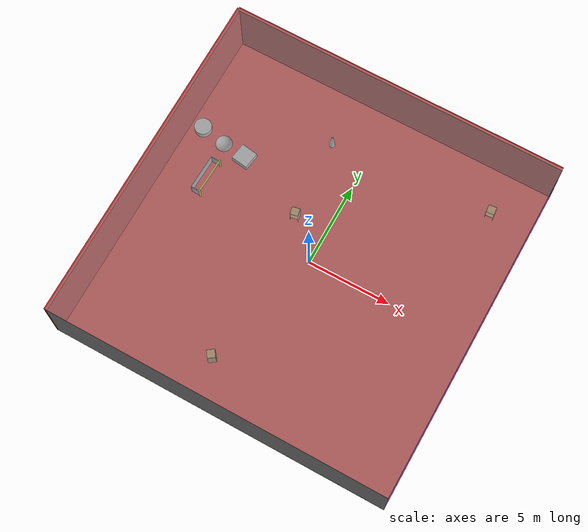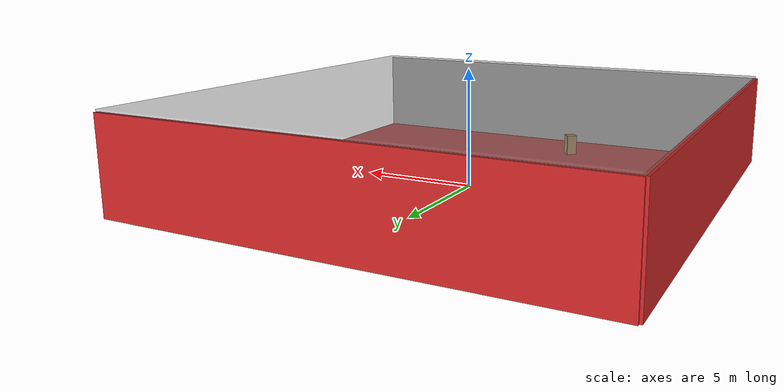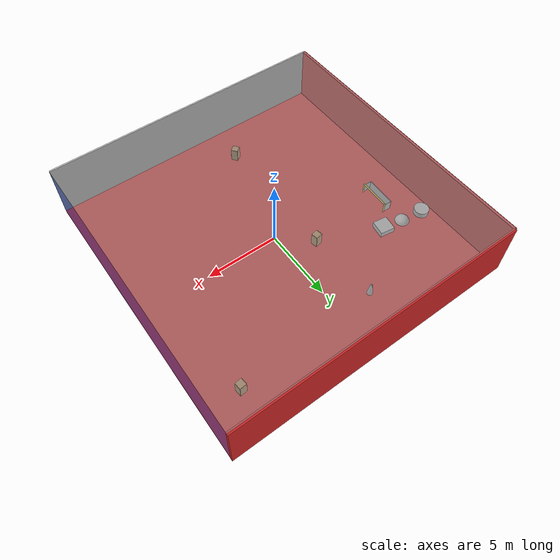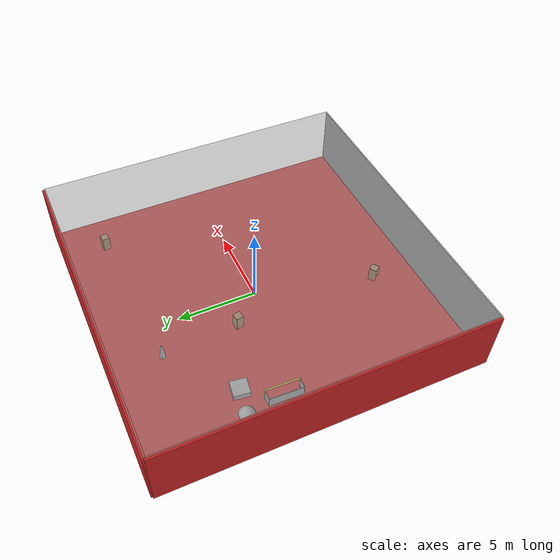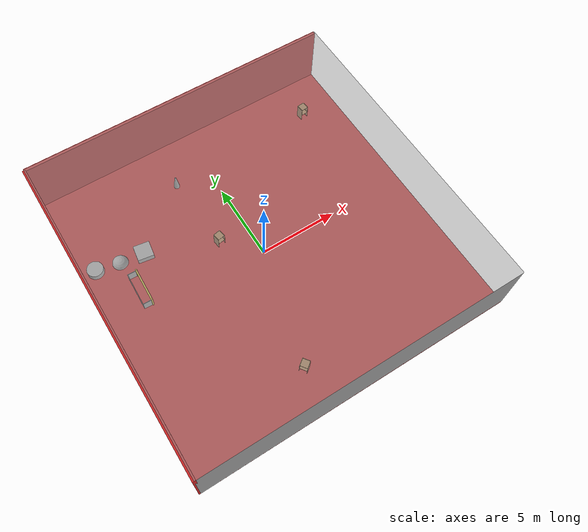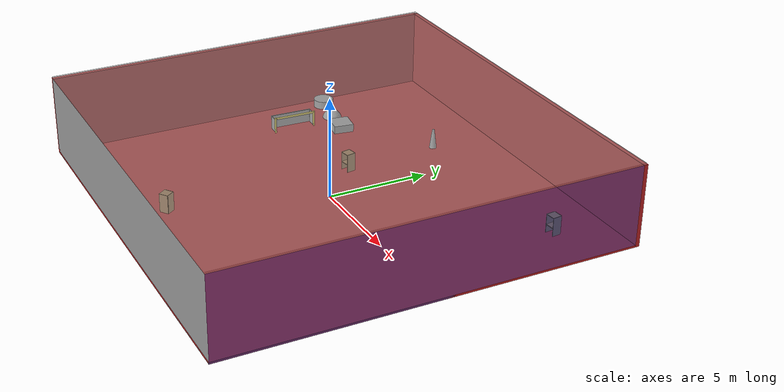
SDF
<sdf version="1.4">
 <world name="default">
  <physics type="ode">
   <max_step_size>0.001</max_step_size>
   <real_time_factor>1</real_time_factor>
   <real_time_update_rate>1000</real_time_update_rate>
   <gravity>0 0 -9.8</gravity>
  </physics>
  <scene><ambient>0.4 0.4 0.4 1</ambient><background>0.7 0.7 0.7 1</background><shadows>1</shadows></scene>
  <model name="Surrounding">
   <static>1</static>
   <link name="Ceiling">
    <collision name="Ceiling_Collision"><geometry><box><size>20 20 0.1</size></box></geometry></collision>
    <visual name="Ceiling_Visual">
     <geometry><box><size>20 20 0.1</size></box></geometry>
     <material>
      <script><uri>file://media/materials/scripts/gazebo.material</uri><name>Gazebo/GreyTransparent</name></script>
     </material>
    </visual>
    <pose>0 0 4.05 0 0 0</pose>
   </link>
   <link name="Wall_South">
    <collision name="Wall_South_Collision">
     <geometry><box><size>20 0 4</size></box></geometry>
     <pose>0 0 2 0 -0 0</pose>
    </collision>
    <visual name="Wall_South_Visual">
     <pose>0 0 2 0 -0 0</pose>
     <geometry><box><size>20 0 4</size></box></geometry>
     <material>
      <script><uri>file://media/materials/scripts/gazebo.material</uri><name>Gazebo/Grey</name></script>
     </material>
    </visual>
    <velocity_decay><linear>0</linear><angular>0</angular></velocity_decay>
    <pose>0 -10 0 0 -0 0</pose>
   </link>
   <link name="Wall_East">
    <collision name="Wall_21_Collision">
     <geometry><box><size>20 0 4</size></box></geometry>
     <pose>0 0 2 0 -0 0</pose>
    </collision>
    <visual name="Wall_21_Visual">
     <pose>0 0 2 0 -0 0</pose>
     <geometry><box><size>20 0 4</size></box></geometry>
     <material>
      <script><uri>file://media/materials/scripts/gazebo.material</uri><name>Gazebo/BlueTransparent</name></script>
     </material>
    </visual>
    <velocity_decay><linear>0</linear><angular>0</angular></velocity_decay>
    <pose>10 0 0 0 -0 1.5708</pose>
   </link>
   <link name="Wall_North">
    <collision name="Wall_22_Collision">
     <geometry><box><size>20 0.2 4</size></box></geometry>
     <pose>0 0 2 0 -0 0</pose>
    </collision>
    <visual name="Wall_22_Visual">
     <pose>0 0 2 0 -0 0</pose>
     <geometry><box><size>20 0.2 4</size></box></geometry>
     <material>
      <script><uri>file://media/materials/scripts/gazebo.material</uri><name>Gazebo/RedBright</name></script>
     </material>
    </visual>
    <velocity_decay><linear>0</linear><angular>0</angular></velocity_decay>
    <pose>0 10 0 0 -0 0</pose>
   </link>
   <link name="Wall_West">
    <collision name="Wall_23_Collision">
     <geometry><box><size>20 0.2 4</size></box></geometry>
     <pose>0 0 2 0 -0 0</pose>
    </collision>
    <visual name="Wall_23_Visual">
     <pose>0 0 2 0 -0 0</pose>
     <geometry><box><size>20 0.2 4</size></box></geometry>
     <material>
      <script><uri>file://media/materials/scripts/gazebo.material</uri><name>Gazebo/RedGlow</name></script>
     </material>
    </visual>
    <velocity_decay><linear>0</linear><angular>0</angular></velocity_decay>
    <pose>-10 0 0 0 0 -1.5708</pose>
   </link>
   <link name="Ground_link">
    <collision name="collision">
     <pose>0 0 .05 0 -0 0</pose>
     <geometry><box><size>20 20 0.1</size></box></geometry>
    </collision>
    <visual name="visual">
     <pose>0 0 .05 0 -0 0</pose>
     <geometry><box><size>20 20 0.1</size></box></geometry>
     <material>
      <script><uri>file://media/materials/scripts/gazebo.material</uri><name>Gazebo/RedBright</name></script>
     </material>
    </visual>
   </link>
   <static>1</static>
  </model>
  <spherical_coordinates>
   <surface_model>EARTH_WGS84</surface_model>
   <latitude_deg>0</latitude_deg>
   <longitude_deg>0</longitude_deg>
   <elevation>0</elevation>
   <heading_deg>0</heading_deg>
  </spherical_coordinates>
  <light name="lightball_0" type="diffuse">
   <diffuse>0.8 0.8 0.8 1</diffuse>
   <specular>0.2 0.2 0.2 1</specular>
   <attenuation>
    <range>100</range>
    <constant>0.7</constant>
    <linear>0.01</linear>
    <quadratic>0.001</quadratic>
   </attenuation>
   <direction>-0.5 0.1 -0.9</direction>
   <pose>0.133829336699 0.962744446615 2.29649113319 0 0 0</pose>
  </light>
  <light name="lightball_1" type="diffuse">
   <diffuse>0.8 0.8 0.8 1</diffuse>
   <specular>0.2 0.2 0.2 1</specular>
   <attenuation>
    <range>100</range>
    <constant>0.7</constant>
    <linear>0.01</linear>
    <quadratic>0.001</quadratic>
   </attenuation>
   <direction>-0.5 0.1 -0.9</direction>
   <pose>-1.444736174 -6.81695203647 2.66296207323 0 0 0</pose>
  </light>
  <light name="lightball_2" type="diffuse">
   <diffuse>0.8 0.8 0.8 1</diffuse>
   <specular>0.2 0.2 0.2 1</specular>
   <attenuation>
    <range>100</range>
    <constant>0.7</constant>
    <linear>0.01</linear>
    <quadratic>0.001</quadratic>
   </attenuation>
   <direction>-0.5 0.1 -0.9</direction>
   <pose>6.07440473915 4.09202533755 0.880213633185 0 0 0</pose>
  </light>
  <light name="lightball_3" type="diffuse">
   <diffuse>0.8 0.8 0.8 1</diffuse>
   <specular>0.2 0.2 0.2 1</specular>
   <attenuation>
    <range>100</range>
    <constant>0.7</constant>
    <linear>0.01</linear>
    <quadratic>0.001</quadratic>
   </attenuation>
   <direction>-0.5 0.1 -0.9</direction>
   <pose>-9.45591489553 -3.66378631182 2.3942232064 0 0 0</pose>
  </light>
  <light name="lightball_4" type="diffuse">
   <diffuse>0.8 0.8 0.8 1</diffuse>
   <specular>0.2 0.2 0.2 1</specular>
   <attenuation>
    <range>100</range>
    <constant>0.7</constant>
    <linear>0.01</linear>
    <quadratic>0.001</quadratic>
   </attenuation>
   <direction>-0.5 0.1 -0.9</direction>
   <pose>-6.46231007124 -6.05591971694 2.93009443345 0 0 0</pose>
  </light>
  <light name="lightball_5" type="diffuse">
   <diffuse>0.8 0.8 0.8 1</diffuse>
   <specular>0.2 0.2 0.2 1</specular>
   <attenuation>
    <range>100</range>
    <constant>0.7</constant>
    <linear>0.01</linear>
    <quadratic>0.001</quadratic>
   </attenuation>
   <direction>-0.5 0.1 -0.9</direction>
   <pose>-6.0416913469 6.08131340069 1.6970988442 0 0 0</pose>
  </light>
  <light name="lightball_6" type="diffuse">
   <diffuse>0.8 0.8 0.8 1</diffuse>
   <specular>0.2 0.2 0.2 1</specular>
   <attenuation>
    <range>100</range>
    <constant>0.7</constant>
    <linear>0.01</linear>
    <quadratic>0.001</quadratic>
   </attenuation>
   <direction>-0.5 0.1 -0.9</direction>
   <pose>-5.82847145979 -1.49459455424 2.52711343611 0 0 0</pose>
  </light>
  <light name="lightball_7" type="diffuse">
   <diffuse>0.8 0.8 0.8 1</diffuse>
   <specular>0.2 0.2 0.2 1</specular>
   <attenuation>
    <range>100</range>
    <constant>0.7</constant>
    <linear>0.01</linear>
    <quadratic>0.001</quadratic>
   </attenuation>
   <direction>-0.5 0.1 -0.9</direction>
   <pose>7.18194406001 4.02579731396 3.09864282112 0 0 0</pose>
  </light>
  <light name="lightball_8" type="diffuse">
   <diffuse>0.8 0.8 0.8 1</diffuse>
   <specular>0.2 0.2 0.2 1</specular>
   <attenuation>
    <range>100</range>
    <constant>0.7</constant>
    <linear>0.01</linear>
    <quadratic>0.001</quadratic>
   </attenuation>
   <direction>-0.5 0.1 -0.9</direction>
   <pose>3.66062466696 0.0402558412912 3.82497732882 0 0 0</pose>
  </light>
  <light name="lightball_9" type="diffuse">
   <diffuse>0.8 0.8 0.8 1</diffuse>
   <specular>0.2 0.2 0.2 1</specular>
   <attenuation>
    <range>100</range>
    <constant>0.7</constant>
    <linear>0.01</linear>
    <quadratic>0.001</quadratic>
   </attenuation>
   <direction>-0.5 0.1 -0.9</direction>
   <pose>2.80708179691 -0.754274504673 0.668743478803 0 0 0</pose>
  </light>
  <include>
   <uri>model://robocup_3Dsim_goal</uri>
   <pose>-7.1833680316 1.51895044665 0 0 0 3.10578107301</pose>
  </include>
  <include>
   <uri>model://textured_shapes</uri>
   <pose>-7.65812374526 3.86111639075 0 0 0 1.42363993122</pose>
  </include>
  <include><uri>model://cabinet</uri><pose>-1.91409863125 -7.31965750835 0 0 0 0.633773901985</pose></include>
  <include><uri>model://cabinet</uri><pose>-1.93923774107 1.92087305052 0 0 0 1.74639360242</pose></include>
  <include>
   <uri>model://construction_cone</uri>
   <pose>-2.2427822667 6.77987243545 0 0 0 0.418746141471</pose>
  </include>
  <include><uri>model://cabinet</uri><pose>7.52449390825 7.27144935548 0 0 0 1.66654409153</pose></include>
 </world>
</sdf>

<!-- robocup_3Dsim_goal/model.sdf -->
<sdf version="1.5">
  <model name="robocup_3d_goal">
    <static>true</static>
    <link name="left_post">
      <pose>0 1.05 0.45 0 0 0</pose>
      <collision name="collision">
        <geometry>
          <cylinder>
            <radius>0.05</radius>
            <length>0.9</length>
          </cylinder>
        </geometry>
      </collision>
      <visual name="visual">
        <geometry>
          <cylinder>
            <radius>0.05</radius>
            <length>0.9</length>
          </cylinder>
        </geometry>
        <material>
          <script>
            <uri>file://media/materials/scripts/gazebo.material</uri>
            <name>Gazebo/ZincYellow</name>
          </script>
        </material>
      </visual>
    </link>
    <link name="left_support_horiz_lower">
      <pose>0.30 1.05 0.01 0 0 0</pose>
      <collision name="collision">
        <geometry>
          <box>
            <size>0.50 0.02 0.02</size>
          </box>
        </geometry>
      </collision>
      <visual name="visual">
        <geometry>
          <box>
            <size>0.50 0.02 0.02</size>
          </box>
        </geometry>
        <material>
          <script>
            <uri>file://media/materials/scripts/gazebo.material</uri>
            <name>Gazebo/White</name>
          </script>
        </material>
      </visual>
    </link>
    <link name="left_support_horiz_upper">
      <pose>0.30 1.05 0.79 0 0 0</pose>
      <collision name="collision">
        <geometry>
          <box>
            <size>0.50 0.02 0.02</size>
          </box>
        </geometry>
      </collision>
      <visual name="visual">
        <geometry>
          <box>
            <size>0.50 0.02 0.02</size>
          </box>
        </geometry>
        <material>
          <script>
            <uri>file://media/materials/scripts/gazebo.material</uri>
            <name>Gazebo/White</name>
          </script>
        </material>
      </visual>
    </link>
    <link name="left_support_vertical">
      <pose>0.56 1.05 0.4 0 1.5708 0</pose>
      <collision name="collision">
        <geometry>
          <box>
            <size>0.80 0.02 0.02</size>
          </box>
        </geometry>
      </collision>
      <visual name="visual">
        <geometry>
          <box>
            <size>0.80 0.02 0.02</size>
          </box>
        </geometry>
        <material>
          <script>
            <uri>file://media/materials/scripts/gazebo.material</uri>
            <name>Gazebo/White</name>
          </script>
        </material>
      </visual>
    </link>
    <link name="right_support_horiz_lower">
      <pose>0.30 -1.05 0.01 0 0 0</pose>
      <collision name="collision">
        <geometry>
          <box>
            <size>0.50 0.02 0.02</size>
          </box>
        </geometry>
      </collision>
      <visual name="visual">
        <geometry>
          <box>
            <size>0.50 0.02 0.02</size>
          </box>
        </geometry>
        <material>
          <script>
            <uri>file://media/materials/scripts/gazebo.material</uri>
            <name>Gazebo/White</name>
          </script>
        </material>
      </visual>
    </link>
    <link name="right_support_horiz_upper">
      <pose>0.30 -1.05 0.79 0 0 0</pose>
      <collision name="collision">
        <geometry>
          <box>
            <size>0.50 0.02 0.02</size>
          </box>
        </geometry>
      </collision>
      <visual name="visual">
        <geometry>
          <box>
            <size>0.50 0.02 0.02</size>
          </box>
        </geometry>
        <material>
          <script>
            <uri>file://media/materials/scripts/gazebo.material</uri>
            <name>Gazebo/White</name>
          </script>
        </material>
      </visual>
    </link>
    <link name="right_support_vertical">
      <pose>0.56 -1.05 0.4 0 1.5708 0</pose>
      <collision name="collision">
        <geometry>
          <box>
            <size>0.80 0.02 0.02</size>
          </box>
        </geometry>
      </collision>
      <visual name="visual">
        <geometry>
          <box>
            <size>0.80 0.02 0.02</size>
          </box>
        </geometry>
        <material>
          <script>
            <uri>file://media/materials/scripts/gazebo.material</uri>
            <name>Gazebo/White</name>
          </script>
        </material>
      </visual>
    </link>
    <link name="center_support_horiz_lower">
      <pose>0.56 0 0.01 0 1.5708 0</pose>
      <collision name="collision">
        <geometry>
          <box>
            <size>0.02 2.08 0.02</size>
          </box>
        </geometry>
      </collision>
      <visual name="visual">
        <geometry>
          <box>
            <size>0.02 2.08 0.02</size>
          </box>
        </geometry>
        <material>
          <script>
            <uri>file://media/materials/scripts/gazebo.material</uri>
            <name>Gazebo/White</name>
          </script>
        </material>
      </visual>
    </link>
    <link name="center_support_horiz_upper">
      <pose>0.56 0 0.79 0 1.5708 0</pose>
      <collision name="collision">
        <geometry>
          <box>
            <size>0.02 2.08 0.02</size>
          </box>
        </geometry>
      </collision>
      <visual name="visual">
        <geometry>
          <box>
            <size>0.02 2.08 0.02</size>
          </box>
        </geometry>
        <material>
          <script>
            <uri>file://media/materials/scripts/gazebo.material</uri>
            <name>Gazebo/White</name>
          </script>
        </material>
      </visual>
    </link>
    <link name="right_post">
      <pose>0 -1.05 0.45 0 0 0</pose>
      <collision name="collision">
        <geometry>
          <cylinder>
            <radius>0.05</radius>
            <length>0.9</length>
          </cylinder>
        </geometry>
      </collision>
      <visual name="visual">
        <geometry>
          <cylinder>
            <radius>0.05</radius>
            <length>0.9</length>
          </cylinder>
        </geometry>
        <material>
          <script>
            <uri>file://media/materials/scripts/gazebo.material</uri>
            <name>Gazebo/ZincYellow</name>
          </script>
        </material>
      </visual>
    </link>
    <link name="crossbar">
      <pose>0 0 0.85 1.57 1.57 0</pose>
      <collision name="collision">
        <geometry>
          <cylinder>
            <radius>0.05</radius>
            <length>2.0</length>
          </cylinder>
        </geometry>
      </collision>
      <visual name="visual">
        <geometry>
          <cylinder>
            <radius>0.05</radius>
            <length>2.0</length>
          </cylinder>
        </geometry>
        <material>
          <script>
            <uri>file://media/materials/scripts/gazebo.material</uri>
            <name>Gazebo/ZincYellow</name>
          </script>
        </material>
      </visual>
    </link>
    <link name="center_net">
      <pose>0.56 0 0.40 0 0 0</pose>
      <collision name="collision">
        <geometry>
          <box>
            <size>0.01 2.1 0.80</size>
          </box>
        </geometry>
      </collision>
      <visual name="visual">
        <geometry>
          <box>
            <size>0.01 2.1 0.80</size>
          </box>
        </geometry>
        <material>
          <script>
            <uri>model://../model_source/models/robocup09_spl_field/materials/scripts/</uri>
            <uri>model://../model_source/models/robocup09_spl_field/materials/textures/</uri>
            <name>RoboCup/Net</name>
          </script>
        </material>
      </visual>
    </link>
    <link name="left_net">
      <pose>0.30 1.05 0.40 0 0 0</pose>
      <collision name="collision">
        <geometry>
          <box>
            <size>0.50 0.01 0.76</size>
          </box>
        </geometry>
      </collision>
      <visual name="visual">
        <geometry>
          <box>
            <size>0.50 0.01 0.76</size>
          </box>
        </geometry>
        <material>
          <script>
            <uri>model://../model_source/models/robocup09_spl_field/materials/scripts/</uri>
            <uri>model://../model_source/models/robocup09_spl_field/materials/textures/</uri>
            <name>RoboCup/Net</name>
          </script>
        </material>
      </visual>
    </link>
    <link name="right_net">
      <pose>0.30 -1.05 0.40 0 0 0</pose>
      <collision name="collision">
        <geometry>
          <box>
            <size>0.50 0.01 0.76</size>
          </box>
        </geometry>
      </collision>
      <visual name="visual">
        <geometry>
          <box>
            <size>0.50 0.01 0.76</size>
          </box>
        </geometry>
        <material>
          <script>
            <uri>model://../model_source/models/robocup09_spl_field/materials/scripts/</uri>
            <uri>model://../model_source/models/robocup09_spl_field/materials/textures/</uri>
            <name>RoboCup/Net</name>
          </script>
        </material>
      </visual>
    </link>
  </model>
</sdf>

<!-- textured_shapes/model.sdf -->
<sdf version="1.6">
  <model name="textured_shapes">
    <pose>0 0 0.5 0 0 0</pose>
    <link name="box">
      <pose>0 -1.5 0 0 0 0</pose>
      <collision name="collision">
        <geometry>
          <box>
            <size>1 1 1</size>
          </box>
        </geometry>
      </collision>
      <visual name="visual">
        <geometry>
          <box>
            <size>1 1 1</size>
          </box>
        </geometry>
        <material>
          <script>
            <uri>model://../model_source/models/textured_shapes/materials/scripts</uri>
            <uri>model://../model_source/models/textured_shapes/materials/textures</uri>
            <name>TexturedShape/Squares</name>
          </script>
        </material>
      </visual>
    </link>
    <link name="sphere">
      <collision name="collision">
        <geometry>
          <sphere>
            <radius>0.5</radius>
          </sphere>
        </geometry>
      </collision>
      <visual name="visual">
        <geometry>
          <sphere>
            <radius>0.5</radius>
          </sphere>
        </geometry>
        <material>
          <script>
            <uri>model://../model_source/models/textured_shapes/materials/scripts</uri>
            <uri>model://../model_source/models/textured_shapes/materials/textures</uri>
            <name>TexturedShape/Squares</name>
          </script>
        </material>
      </visual>
    </link>
    <link name="cylinder">
      <pose>0 1.5 0 0 0 0</pose>
      <collision name="collision">
        <geometry>
          <cylinder>
            <radius>0.5</radius>
            <length>1</length>
          </cylinder>
        </geometry>
      </collision>
      <visual name="visual">
        <geometry>
          <cylinder>
            <radius>0.5</radius>
            <length>1</length>
          </cylinder>
        </geometry>
        <material>
          <script>
            <uri>model://../model_source/models/textured_shapes/materials/scripts</uri>
            <uri>model://../model_source/models/textured_shapes/materials/textures</uri>
            <name>TexturedShape/Squares</name>
          </script>
        </material>
      </visual>
    </link>
  </model>
</sdf>

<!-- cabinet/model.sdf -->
<sdf version="1.5">
  <model name="cabinet">
    <static>true</static>
    <link name="cabinet_bottom_plate">
      <inertial>
        <pose>0 0 -1 0 0 0</pose>
        <inertia>
          <ixx>2.050000</ixx>
          <ixy>0</ixy>
          <ixz>0</ixz>
          <iyy>2.050000</iyy>
          <iyz>0</iyz>
          <izz>2.050000</izz>
        </inertia>
        <mass>25.000000</mass>
      </inertial>
      <collision name="cabinet_bottom_plate_geom">
        <pose>0 0 0.010000 0 0 0</pose>
        <geometry>
          <box>
            <size>0.450000 0.450000 0.020000</size>
          </box>
        </geometry>
      </collision>
      <visual name="cabinet_bottom_plate_geom_visual">
        <pose>0 0 0.010000 0 0 0</pose>
        <geometry>
          <box>
            <size>0.450000 0.450000 0.020000</size>
          </box>
        </geometry>
        <material>
          <script>
            <uri>model://media/materials/scripts/gazebo.material</uri>
            <name>Gazebo/Wood</name>
          </script>
        </material>
      </visual>
      <collision name="cabinet_bottom_plate_geom_cabinet_back_plate">
        <pose>0.235000 0 0.510000 0 0 0</pose>
        <geometry>
          <box>
            <size>0.020000 0.450000 1.020000</size>
          </box>
        </geometry>
      </collision>
      <visual name="cabinet_bottom_plate_geom_cabinet_back_plate_visual">
        <pose>0.235000 0 0.510000 0 0 0</pose>
        <geometry>
          <box>
            <size>0.020000 0.450000 1.020000</size>
          </box>
        </geometry>
        <material>
          <script>
            <uri>model://media/materials/scripts/gazebo.material</uri>
            <name>Gazebo/Wood</name>
          </script>
        </material>
      </visual>
      <collision name="cabinet_bottom_plate_geom_cabinet_left_plate">
        <pose>0 0.235000 0.510000 0 0 0</pose>
        <geometry>
          <box>
            <size>0.450000 0.020000 1.020000</size>
          </box>
        </geometry>
      </collision>
      <visual name="cabinet_bottom_plate_geom_cabinet_left_plate_visual">
        <pose>0 0.235000 0.510000 0 0 0</pose>
        <geometry>
          <box>
            <size>0.450000 0.020000 1.020000</size>
          </box>
        </geometry>
        <material>
          <script>
            <uri>model://media/materials/scripts/gazebo.material</uri>
            <name>Gazebo/Wood</name>
          </script>
        </material>
      </visual>
      <collision name="cabinet_bottom_plate_geom_cabinet_middle_plate">
        <pose>0 0 0.510000 0 0 0</pose>
        <geometry>
          <box>
            <size>0.450000 0.450000 0.020000</size>
          </box>
        </geometry>
      </collision>
      <visual name="cabinet_bottom_plate_geom_cabinet_middle_plate_visual">
        <pose>0 0 0.510000 0 0 0</pose>
        <geometry>
          <box>
            <size>0.450000 0.450000 0.020000</size>
          </box>
        </geometry>
        <material>
          <script>
            <uri>model://media/materials/scripts/gazebo.material</uri>
            <name>Gazebo/Wood</name>
          </script>
        </material>
      </visual>
      <collision name="cabinet_bottom_plate_geom_cabinet_right_plate">
        <pose>0 -0.235000 0.510000 0 0 0</pose>
        <geometry>
          <box>
            <size>0.450000 0.020000 1.020000</size>
          </box>
        </geometry>
      </collision>
      <visual name="cabinet_bottom_plate_geom_cabinet_right_plate_visual">
        <pose>0 -0.235000 0.510000 0 0 0</pose>
        <geometry>
          <box>
            <size>0.450000 0.020000 1.020000</size>
          </box>
        </geometry>
        <material>
          <script>
            <uri>model://media/materials/scripts/gazebo.material</uri>
            <name>Gazebo/Wood</name>
          </script>
        </material>
      </visual>
      <collision name="cabinet_bottom_plate_geom_cabinet_top_plate">
        <pose>0 0 1.010000 0 0 0</pose>
        <geometry>
          <box>
            <size>0.450000 0.450000 0.020000</size>
          </box>
        </geometry>
      </collision>
      <visual name="cabinet_bottom_plate_geom_cabinet_top_plate_visual">
        <pose>0 0 1.010000 0 0 0</pose>
        <geometry>
          <box>
            <size>0.450000 0.450000 0.020000</size>
          </box>
        </geometry>
        <material>
          <script>
            <uri>model://media/materials/scripts/gazebo.material</uri>
            <name>Gazebo/Wood</name>
          </script>
        </material>
      </visual>
    </link>
  </model>
</sdf>

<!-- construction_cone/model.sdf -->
<sdf version="1.5">
  <model name="Construction Cone">
    <link name="link">
      <collision name="collision">
        <geometry>
          <mesh>
            <scale>10 10 10</scale>
            <uri>file://isr-testbed/construction_cone/meshes/construction_cone.dae</uri>
          </mesh>
        </geometry>
      </collision>
      <visual name="visual">
        <geometry>
          <mesh>
            <scale>10 10 10</scale>
            <uri>file://isr-testbed/construction_cone/meshes/construction_cone.dae</uri>
          </mesh>
        </geometry>
      </visual>
    </link>
  </model>
</sdf>
